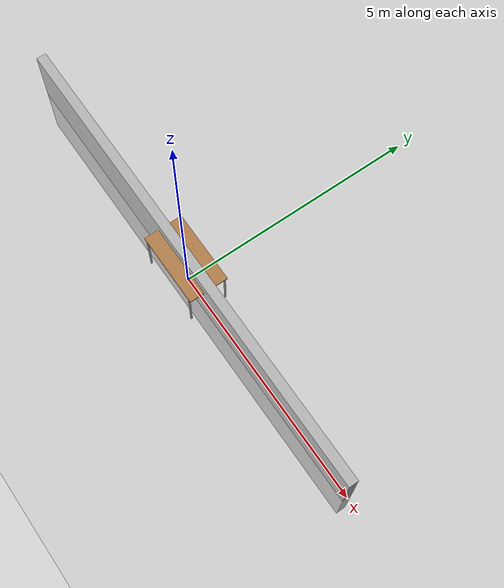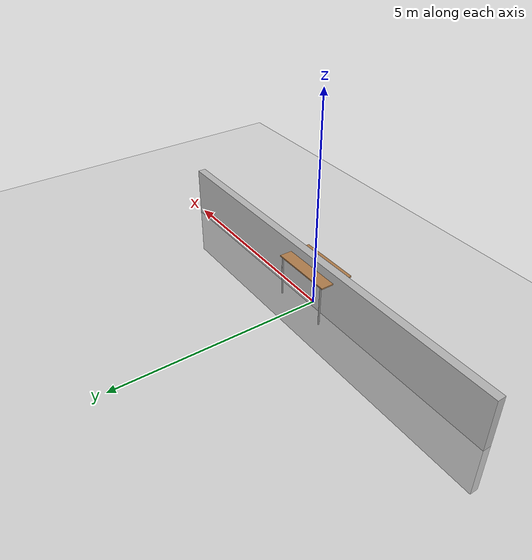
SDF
<?xml version="1.0"?>
<sdf version="1.6">
  <world name="floor1">
    <include>
      <uri>model://sun</uri>
    </include>
    <include>
      <uri>model://ground_plane</uri>
    </include>

    <model name="wall_1">
      <static>true</static>
      <link name="link">
        <visual name="visual">
          <geometry>
            <box><size>10 0.2 2.5</size></box>
          </geometry>
        </visual>
      </link>
    </model>

    <include>
      <uri>model://table</uri>
    </include>
  </world>
</sdf>

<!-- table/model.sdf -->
<sdf version="1.5">
  <model name="table">
    <static>true</static>
    <link name="link">
      <collision name="surface">
        <pose>0 0 1.0 0 0 0</pose>
        <geometry>
          <box>
            <size>1.5 0.8 0.03</size>
          </box>
        </geometry>
        <surface>
          <friction>
            <ode>
              <mu>0.6</mu>
              <mu2>0.6</mu2>
            </ode>
          </friction>
        </surface>
      </collision>
      <visual name="visual1">
        <pose>0 0 1.0 0 0 0</pose>
        <geometry>
          <box>
            <size>1.5 0.8 0.03</size>
          </box>
        </geometry>
        <material>
          <script>
            <uri>model://media/materials/scripts/gazebo.material</uri>
            <name>Gazebo/Wood</name>
          </script>
        </material>
      </visual>
      <collision name="front_left_leg">
        <pose>0.68 0.38 0.5 0 0 0</pose>
        <geometry>
          <cylinder>
            <radius>0.02</radius>
            <length>1.0</length>
          </cylinder>
        </geometry>
      </collision>
      <visual name="front_left_leg">
        <pose>0.68 0.38 0.5 0 0 0</pose>
        <geometry>
          <cylinder>
            <radius>0.02</radius>
            <length>1.0</length>
          </cylinder>
        </geometry>
        <material>
          <script>
            <uri>model://media/materials/scripts/gazebo.material</uri>
            <name>Gazebo/Grey</name>
          </script>
        </material>
      </visual>
      <collision name="front_right_leg">
        <pose>0.68 -0.38 0.5 0 0 0</pose>
        <geometry>
          <cylinder>
            <radius>0.02</radius>
            <length>1.0</length>
          </cylinder>
        </geometry>
      </collision>
      <visual name="front_right_leg">
        <pose>0.68 -0.38 0.5 0 0 0</pose>
        <geometry>
          <cylinder>
            <radius>0.02</radius>
            <length>1.0</length>
          </cylinder>
        </geometry>
        <material>
          <script>
            <uri>model://media/materials/scripts/gazebo.material</uri>
            <name>Gazebo/Grey</name>
          </script>
        </material>
      </visual>
      <collision name="back_right_leg">
        <pose>-0.68 -0.38 0.5 0 0 0</pose>
        <geometry>
          <cylinder>
            <radius>0.02</radius>
            <length>1.0</length>
          </cylinder>
        </geometry>
      </collision>
      <visual name="back_right_leg">
        <pose>-0.68 -0.38 0.5 0 0 0</pose>
        <geometry>
          <cylinder>
            <radius>0.02</radius>
            <length>1.0</length>
          </cylinder>
        </geometry>
        <material>
          <script>
            <uri>model://media/materials/scripts/gazebo.material</uri>
            <name>Gazebo/Grey</name>
          </script>
        </material>
      </visual>
      <collision name="back_left_leg">
        <pose>-0.68 0.38 0.5 0 0 0</pose>
        <geometry>
          <cylinder>
            <radius>0.02</radius>
            <length>1.0</length>
          </cylinder>
        </geometry>
      </collision>
      <visual name="back_left_leg">
        <pose>-0.68 0.38 0.5 0 0 0</pose>
        <geometry>
          <cylinder>
            <radius>0.02</radius>
            <length>1.0</length>
          </cylinder>
        </geometry>
        <material>
          <script>
            <uri>model://media/materials/scripts/gazebo.material</uri>
            <name>Gazebo/Grey</name>
          </script>
        </material>
      </visual>
    </link>
  </model>
</sdf>
